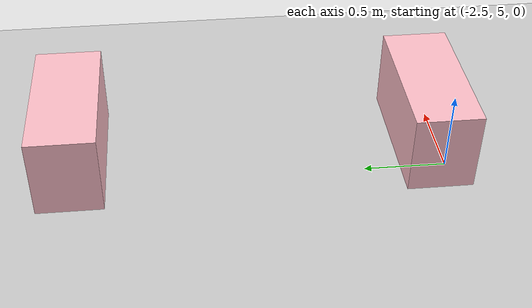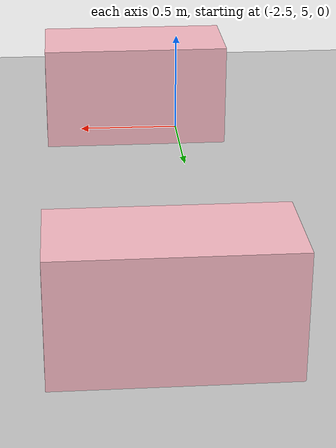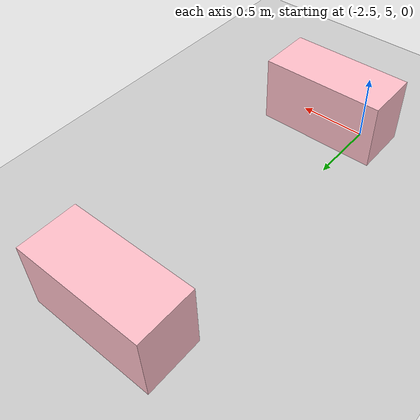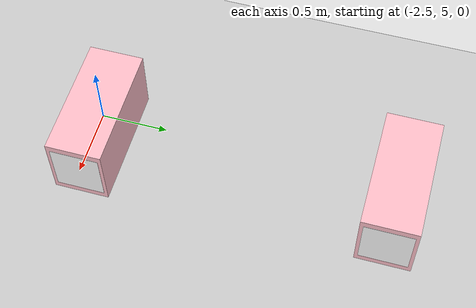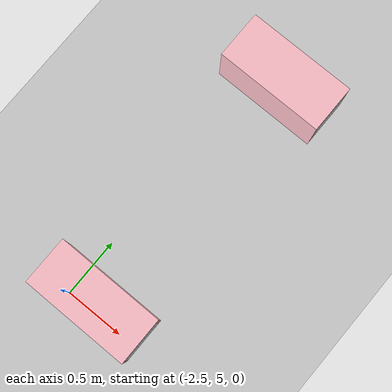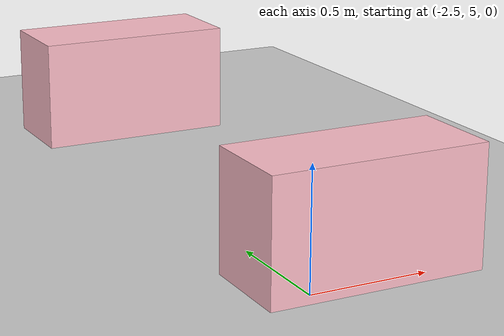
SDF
<sdf version="1.9">
 <world name="pig_pen_16units_world">
  <model name="ground_plane">
   <static>true</static>
   <link name="link">
    <collision name="collision">
     <geometry><plane><normal>0 0 1</normal><size>30 30</size></plane></geometry>
     <surface><friction><ode><mu>1.0</mu><mu2>1.0</mu2></ode></friction></surface>
    </collision>
    <visual name="visual">
     <geometry><plane><normal>0 0 1</normal><size>30 30</size></plane></geometry>
     <material>
      <ambient>0.8 0.8 0.8 1</ambient>
      <diffuse>0.8 0.8 0.8 1</diffuse>
      <specular>0.2 0.2 0.2 1</specular>
     </material>
    </visual>
   </link>
  </model>
  <include><uri>model://farm_pig</uri><name>pig5_a</name><pose>-2.275 5.085 0.27 0 0 0</pose></include>
  <include><uri>model://farm_pig</uri><name>pig8_b</name><pose>-2.275 7.275 0.27 0 0 0</pose></include>
 </world>
</sdf>
